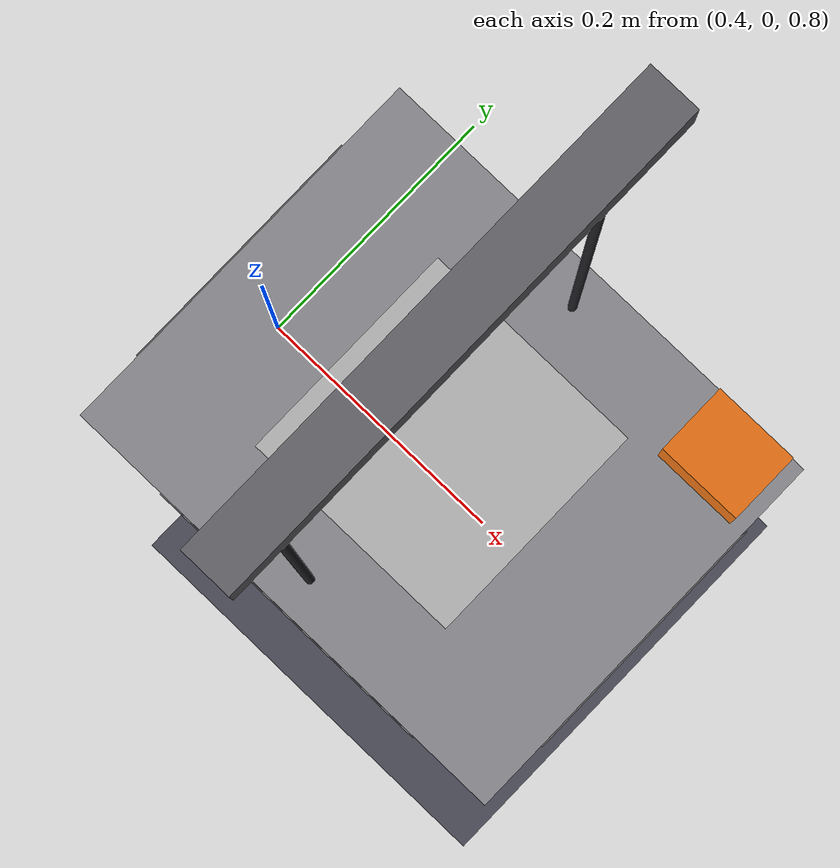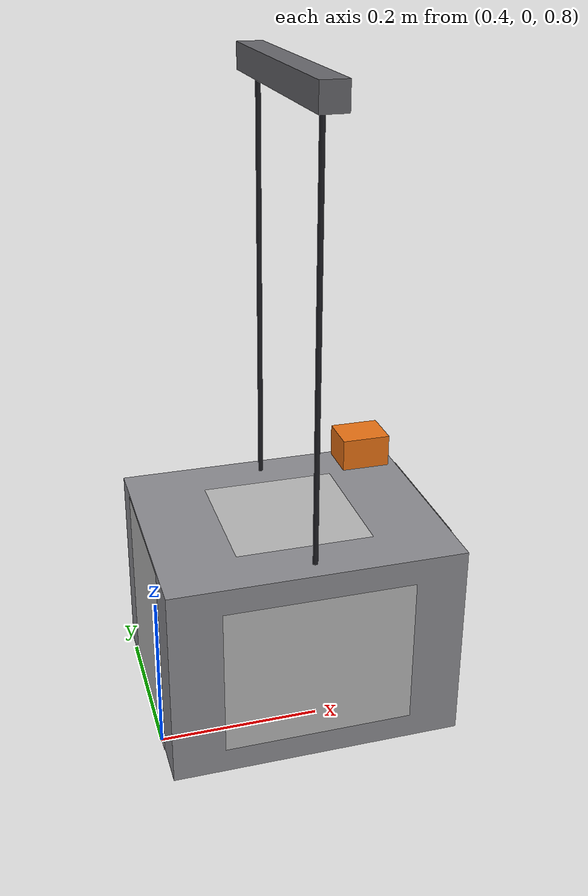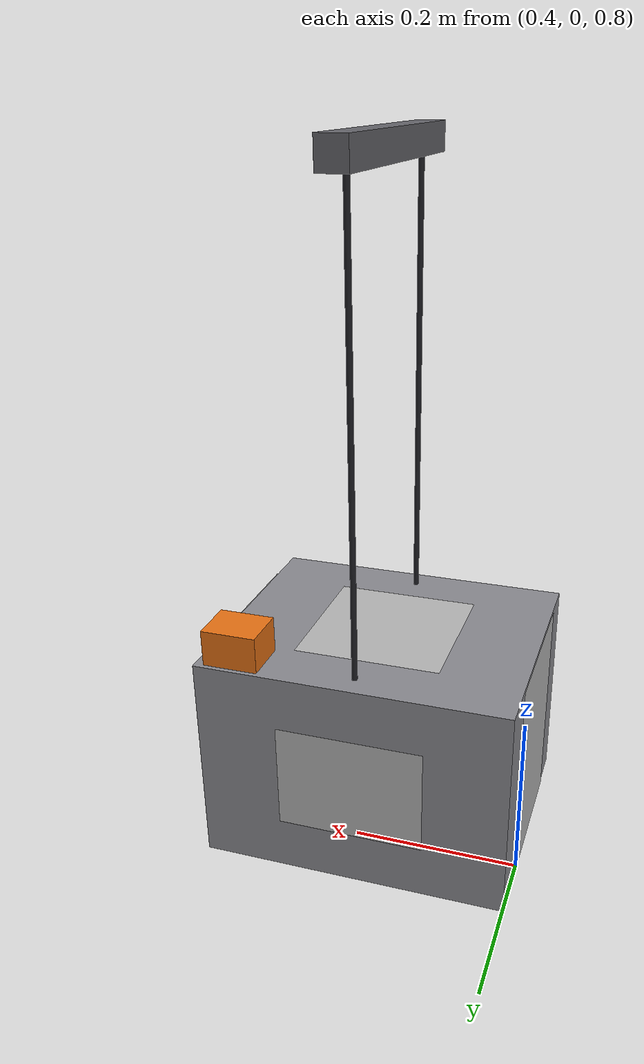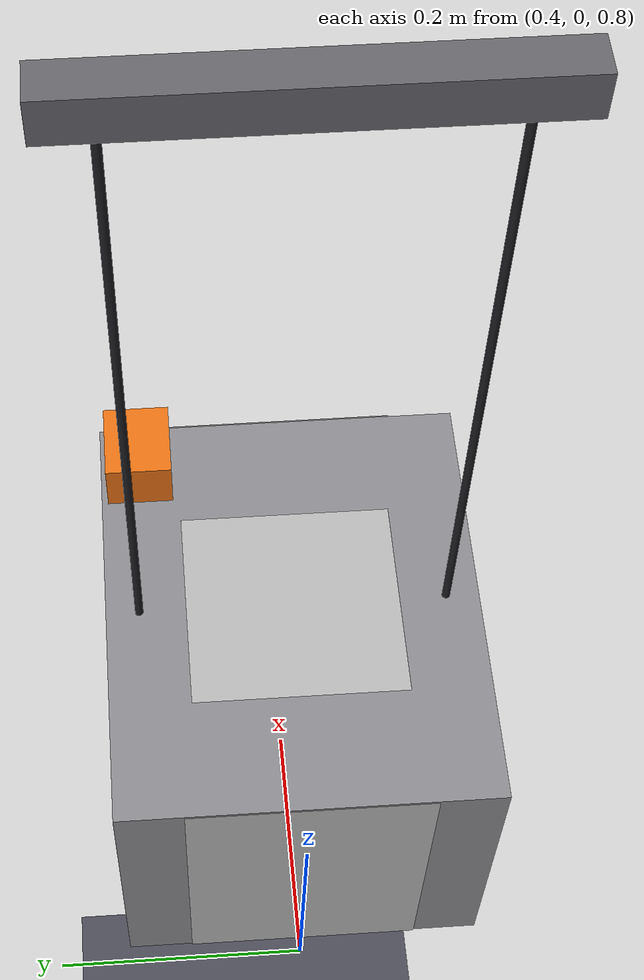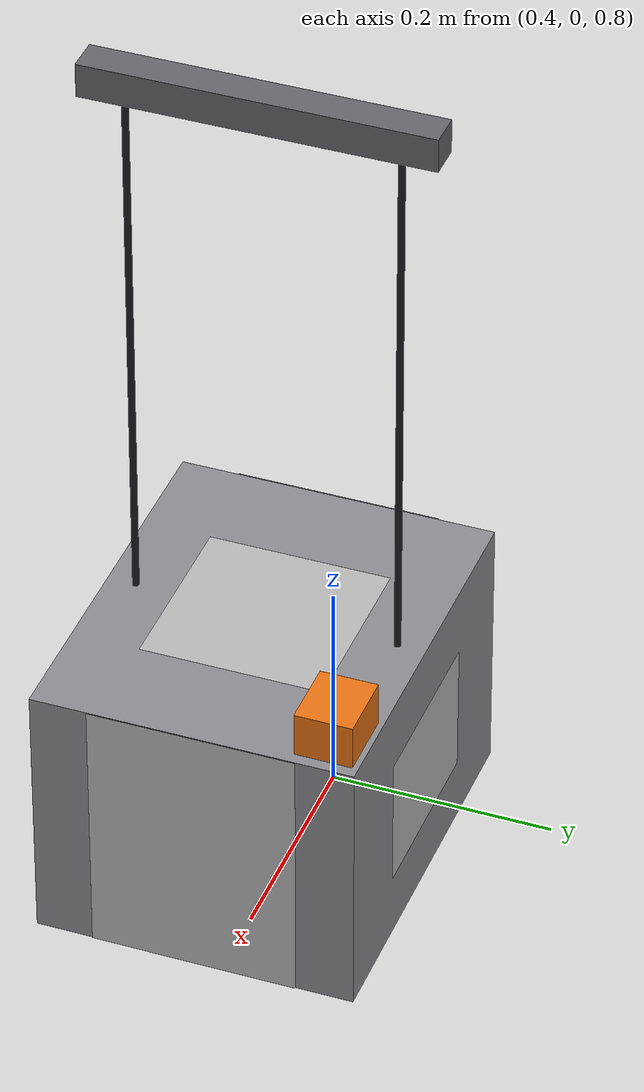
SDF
<?xml version="1.0"?>
<sdf version="1.7">
  <world name="calibration_texture_smoke">

    <!-- 光源 -->
    <light name="sun" type="directional">
      <pose>0 0 2 0 0 0</pose>
      <diffuse>0.8 0.8 0.8 1</diffuse>
      <specular>0.1 0.1 0.1 1</specular>
      <direction>0 -0.5 -1</direction>
      <cast_shadows>false</cast_shadows>
    </light>

    <!-- 环境光 (确保贴图不依赖方向光) -->
    <light name="ambient_fill" type="directional">
      <pose>0 0 1 0 0 0</pose>
      <diffuse>0.4 0.4 0.4 1</diffuse>
      <specular>0 0 0 1</specular>
      <direction>0 0 -1</direction>
      <cast_shadows>false</cast_shadows>
    </light>

    <!-- 地面 -->
    <model name="ground_plane">
      <static>true</static>
      <link name="link">
        <collision name="collision">
          <geometry><plane><normal>0 0 1</normal><size>10 10</size></plane></geometry>
        </collision>
        <visual name="visual">
          <geometry><plane><normal>0 0 1</normal><size>10 10</size></plane></geometry>
          <material>
            <ambient>0.3 0.3 0.35 1</ambient>
          </material>
        </visual>
      </link>
    </model>

    <!-- 标定目标 V1 (SDF model, V5 几何, 位置与完整场景一致) -->
    <model name="simple_hanging_workpiece">
      <static>true</static>
      <pose>0.56 0 0.98 0 0 0</pose>

      <!-- 主体 V5: 0.34×0.28×0.24 -->
      <link name="main_body">
        <visual name="body_vis">
          <geometry><box><size>0.34 0.28 0.24</size></box></geometry>
          <material><ambient>0.55 0.55 0.57 1</ambient></material>
        </visual>
      </link>

      <!-- 顶部偏置块 V5: 0.06×0.05×0.04, pose 0.13 0.11 0.14 -->
      <link name="top_offset_block">
        <pose>0.13 0.11 0.14 0 0 0</pose>
        <visual name="block_vis">
          <geometry><box><size>0.06 0.05 0.04</size></box></geometry>
          <material>
            <ambient>0.92 0.45 0.08 1</ambient>
          </material>
        </visual>
      </link>

      <!-- Front ChArUco panel — 面向 +X (smoke test 验证目标) -->
      <link name="front_panel_smoke">
        <pose>0.171 0 0 0 1.570796 0</pose>
        <visual name="front_panel_vis">
          <geometry>
            <mesh>
              <uri>model://calibration_target_v1/meshes/panel_unit.dae</uri>
              <scale>0.24 0.18 1.0</scale>
            </mesh>
          </geometry>
          <cast_shadows>false</cast_shadows>
          <material>
            <script>
              <uri>model://calibration_target_v1/materials/scripts</uri>
              <uri>model://calibration_target_v1/materials/textures</uri>
              <name>CR5/Calibration/CharucoFrontV1</name>
            </script>
          </material>
        </visual>
      </link>

      <!-- Left panel -->
      <link name="left_panel">
        <pose>0 0.141 0 -1.570796 0 0</pose>
        <visual name="left_panel_vis">
          <geometry>
            <mesh>
              <uri>model://calibration_target_v1/meshes/panel_unit.dae</uri>
              <scale>0.16 0.12 1.0</scale>
            </mesh>
          </geometry>
          <cast_shadows>false</cast_shadows>
          <material>
            <script>
              <uri>model://calibration_target_v1/materials/scripts</uri>
              <uri>model://calibration_target_v1/materials/textures</uri>
              <name>CR5/Calibration/CharucoLeftV1</name>
            </script>
          </material>
        </visual>
      </link>

      <!-- Right panel -->
      <link name="right_panel">
        <pose>0 -0.141 0 1.570796 0 0</pose>
        <visual name="right_panel_vis">
          <geometry>
            <mesh>
              <uri>model://calibration_target_v1/meshes/panel_unit.dae</uri>
              <scale>0.22 0.18 1.0</scale>
            </mesh>
          </geometry>
          <cast_shadows>false</cast_shadows>
          <material>
            <script>
              <uri>model://calibration_target_v1/materials/scripts</uri>
              <uri>model://calibration_target_v1/materials/textures</uri>
              <name>CR5/Calibration/AprilTagRightV1</name>
            </script>
          </material>
        </visual>
      </link>

      <!-- Top panel -->
      <link name="top_panel">
        <pose>0 0 0.121 0 0 0</pose>
        <visual name="top_panel_vis">
          <geometry>
            <mesh>
              <uri>model://calibration_target_v1/meshes/panel_unit.dae</uri>
              <scale>0.16 0.16 1.0</scale>
            </mesh>
          </geometry>
          <cast_shadows>false</cast_shadows>
          <material>
            <script>
              <uri>model://calibration_target_v1/materials/scripts</uri>
              <uri>model://calibration_target_v1/materials/textures</uri>
              <name>CR5/Calibration/AprilTagTopV1</name>
            </script>
          </material>
        </visual>
      </link>

      <!-- Back panel -->
      <link name="back_panel">
        <pose>-0.171 0 0 0 -1.570796 0</pose>
        <visual name="back_panel_vis">
          <geometry>
            <mesh>
              <uri>model://calibration_target_v1/meshes/panel_unit.dae</uri>
              <scale>0.24 0.18 1.0</scale>
            </mesh>
          </geometry>
          <cast_shadows>false</cast_shadows>
          <material>
            <script>
              <uri>model://calibration_target_v1/materials/scripts</uri>
              <uri>model://calibration_target_v1/materials/textures</uri>
              <name>CR5/Calibration/CharucoBackV1</name>
            </script>
          </material>
        </visual>
      </link>

      <!-- 吊索 V5: y=±0.115, length=0.485, center z=0.3625 -->
      <link name="left_cable">
        <pose>0 -0.115 0.3625 0 0 0</pose>
        <visual name="left_cable_vis">
          <geometry><cylinder><radius>0.003</radius><length>0.485</length></cylinder></geometry>
          <material><ambient>0.12 0.12 0.14 1</ambient></material>
        </visual>
      </link>
      <link name="right_cable">
        <pose>0 0.115 0.3625 0 0 0</pose>
        <visual name="right_cable_vis">
          <geometry><cylinder><radius>0.003</radius><length>0.485</length></cylinder></geometry>
          <material><ambient>0.12 0.12 0.14 1</ambient></material>
        </visual>
      </link>

      <!-- 横杆 -->
      <link name="spreader_bar">
        <pose>0 0 0.62 0 0 0</pose>
        <visual name="bar_vis">
          <geometry><box><size>0.03 0.30 0.03</size></box></geometry>
          <material><ambient>0.40 0.40 0.42 1</ambient></material>
        </visual>
      </link>
    </model>

    <!-- Smoke test camera: 正对 Front 面板 (约 0.6m 距离) -->
    <model name="smoke_camera">
      <static>true</static>
      <pose>1.16 0 0.98 0 0 0</pose>
      <link name="camera_link">
        <pose>0 0 0 0 0 0</pose>
        <sensor name="smoke_cam" type="camera">
          <camera>
            <horizontal_fov>1.0472</horizontal_fov>
            <image><width>1280</width><height>960</height></image>
            <clip><near>0.1</near><far>10</far></clip>
          </camera>
          <always_on>true</always_on>
          <update_rate>10</update_rate>
          <visualize>false</visualize>
        </sensor>
      </link>
    </model>

  </world>
</sdf>
